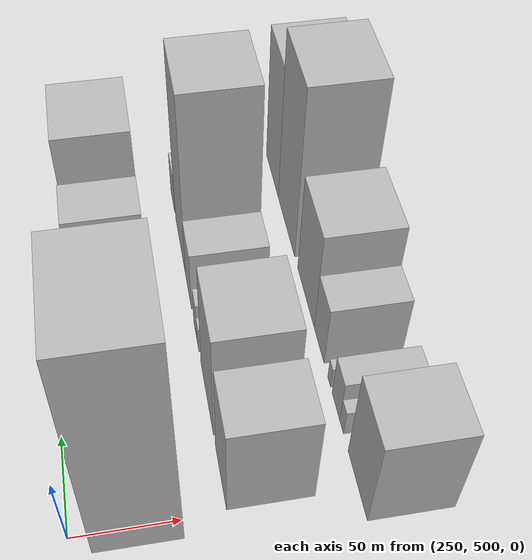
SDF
<sdf version="1.6">
 <world name="default">
  <model name="building_204">
   <static>1</static>
   <pose>280.0000 518.4276 0 0.000000 0.000000 0.000000</pose>
   <link name="link">
    <pose>0 0 73.50 0 0 0</pose>
    <collision name="collision"><geometry><box><size>40.0000 53.7367 147.0000</size></box></geometry></collision>
    <visual name="visual">
     <cast_shadows>0</cast_shadows>
     <geometry><box><size>40.0000 53.7367 147.0000</size></box></geometry>
     <material>
      <script>
       <uri>model://HANNAS_wall/materials/scripts</uri>
       <uri>model://HANNAS_wall/materials/textures</uri>
       <name>vrc/HANNAS_wall</name>
      </script>
     </material>
    </visual>
   </link>
  </model>
  <model name="building_205">
   <static>1</static>
   <pose>280.0000 563.7916 0 0.000000 0.000000 0.000000</pose>
   <link name="link">
    <pose>0 0 33.00 0 0 0</pose>
    <collision name="collision"><geometry><box><size>40.0000 36.9914 66.0000</size></box></geometry></collision>
    <visual name="visual">
     <cast_shadows>0</cast_shadows>
     <geometry><box><size>40.0000 36.9914 66.0000</size></box></geometry>
     <material>
      <script>
       <uri>model://HANNAS_wall/materials/scripts</uri>
       <uri>model://HANNAS_wall/materials/textures</uri>
       <name>vrc/HANNAS_wall</name>
      </script>
     </material>
    </visual>
   </link>
  </model>
  <model name="building_206">
   <static>1</static>
   <pose>280.0000 594.3419 0 0.000000 0.000000 0.000000</pose>
   <link name="link">
    <pose>0 0 21.00 0 0 0</pose>
    <collision name="collision"><geometry><box><size>40.0000 24.1091 42.0000</size></box></geometry></collision>
    <visual name="visual">
     <cast_shadows>0</cast_shadows>
     <geometry><box><size>40.0000 24.1091 42.0000</size></box></geometry>
     <material>
      <script>
       <uri>model://HANNAS_wall/materials/scripts</uri>
       <uri>model://HANNAS_wall/materials/textures</uri>
       <name>vrc/HANNAS_wall</name>
      </script>
     </material>
    </visual>
   </link>
  </model>
  <model name="building_207">
   <static>1</static>
   <pose>280.0000 623.6941 0 0.000000 0.000000 0.000000</pose>
   <link name="link">
    <pose>0 0 22.50 0 0 0</pose>
    <collision name="collision"><geometry><box><size>40.0000 26.5952 45.0000</size></box></geometry></collision>
    <visual name="visual">
     <cast_shadows>0</cast_shadows>
     <geometry><box><size>40.0000 26.5952 45.0000</size></box></geometry>
     <material>
      <script>
       <uri>model://HANNAS_wall/materials/scripts</uri>
       <uri>model://HANNAS_wall/materials/textures</uri>
       <name>vrc/HANNAS_wall</name>
      </script>
     </material>
    </visual>
   </link>
  </model>
  <model name="building_208">
   <static>1</static>
   <pose>280.0000 650.5038 0 0.000000 0.000000 0.000000</pose>
   <link name="link">
    <pose>0 0 25.50 0 0 0</pose>
    <collision name="collision"><geometry><box><size>40.0000 27.0244 51.0000</size></box></geometry></collision>
    <visual name="visual">
     <cast_shadows>0</cast_shadows>
     <geometry><box><size>40.0000 27.0244 51.0000</size></box></geometry>
     <material>
      <script>
       <uri>model://HANNAS_wall/materials/scripts</uri>
       <uri>model://HANNAS_wall/materials/textures</uri>
       <name>vrc/HANNAS_wall</name>
      </script>
     </material>
    </visual>
   </link>
  </model>
  <model name="building_209">
   <static>1</static>
   <pose>280.0000 692.4251 0 0.000000 0.000000 0.000000</pose>
   <link name="link">
    <pose>0 0 37.50 0 0 0</pose>
    <collision name="collision"><geometry><box><size>40.0000 42.8182 75.0000</size></box></geometry></collision>
    <visual name="visual">
     <cast_shadows>0</cast_shadows>
     <geometry><box><size>40.0000 42.8182 75.0000</size></box></geometry>
     <material>
      <script>
       <uri>model://HANNAS_wall/materials/scripts</uri>
       <uri>model://HANNAS_wall/materials/textures</uri>
       <name>vrc/HANNAS_wall</name>
      </script>
     </material>
    </visual>
   </link>
  </model>
  <model name="building_259">
   <static>1</static>
   <pose>340.0000 517.2778 0 0.000000 0.000000 0.000000</pose>
   <link name="link">
    <pose>0 0 31.50 0 0 0</pose>
    <collision name="collision"><geometry><box><size>40.0000 31.6910 63.0000</size></box></geometry></collision>
    <visual name="visual">
     <cast_shadows>0</cast_shadows>
     <geometry><box><size>40.0000 31.6910 63.0000</size></box></geometry>
     <material>
      <script>
       <uri>model://HANNAS_wall/materials/scripts</uri>
       <uri>model://HANNAS_wall/materials/textures</uri>
       <name>vrc/HANNAS_wall</name>
      </script>
     </material>
    </visual>
   </link>
  </model>
  <model name="building_260">
   <static>1</static>
   <pose>340.0000 559.4416 0 0.000000 0.000000 0.000000</pose>
   <link name="link">
    <pose>0 0 37.50 0 0 0</pose>
    <collision name="collision"><geometry><box><size>40.0000 40.6365 75.0000</size></box></geometry></collision>
    <visual name="visual">
     <cast_shadows>0</cast_shadows>
     <geometry><box><size>40.0000 40.6365 75.0000</size></box></geometry>
     <material>
      <script>
       <uri>model://HANNAS_wall/materials/scripts</uri>
       <uri>model://HANNAS_wall/materials/textures</uri>
       <name>vrc/HANNAS_wall</name>
      </script>
     </material>
    </visual>
   </link>
  </model>
  <model name="building_261">
   <static>1</static>
   <pose>340.0000 590.6284 0 0.000000 0.000000 0.000000</pose>
   <link name="link">
    <pose>0 0 9.00 0 0 0</pose>
    <collision name="collision"><geometry><box><size>40.0000 7.7369 18.0000</size></box></geometry></collision>
    <visual name="visual">
     <cast_shadows>0</cast_shadows>
     <geometry><box><size>40.0000 7.7369 18.0000</size></box></geometry>
     <material>
      <script>
       <uri>model://HANNAS_wall/materials/scripts</uri>
       <uri>model://HANNAS_wall/materials/textures</uri>
       <name>vrc/HANNAS_wall</name>
      </script>
     </material>
    </visual>
   </link>
  </model>
  <model name="building_262">
   <static>1</static>
   <pose>340.0000 600.0685 0 0.000000 0.000000 0.000000</pose>
   <link name="link">
    <pose>0 0 13.50 0 0 0</pose>
    <collision name="collision"><geometry><box><size>40.0000 11.1434 27.0000</size></box></geometry></collision>
    <visual name="visual">
     <cast_shadows>0</cast_shadows>
     <geometry><box><size>40.0000 11.1434 27.0000</size></box></geometry>
     <material>
      <script>
       <uri>model://HANNAS_wall/materials/scripts</uri>
       <uri>model://HANNAS_wall/materials/textures</uri>
       <name>vrc/HANNAS_wall</name>
      </script>
     </material>
    </visual>
   </link>
  </model>
  <model name="building_263">
   <static>1</static>
   <pose>340.0000 625.5204 0 0.000000 0.000000 0.000000</pose>
   <link name="link">
    <pose>0 0 21.00 0 0 0</pose>
    <collision name="collision"><geometry><box><size>40.0000 23.7603 42.0000</size></box></geometry></collision>
    <visual name="visual">
     <cast_shadows>0</cast_shadows>
     <geometry><box><size>40.0000 23.7603 42.0000</size></box></geometry>
     <material>
      <script>
       <uri>model://HANNAS_wall/materials/scripts</uri>
       <uri>model://HANNAS_wall/materials/textures</uri>
       <name>vrc/HANNAS_wall</name>
      </script>
     </material>
    </visual>
   </link>
  </model>
  <model name="building_264">
   <static>1</static>
   <pose>340.0000 657.7177 0 0.000000 0.000000 0.000000</pose>
   <link name="link">
    <pose>0 0 61.50 0 0 0</pose>
    <collision name="collision"><geometry><box><size>40.0000 40.6342 123.0000</size></box></geometry></collision>
    <visual name="visual">
     <cast_shadows>0</cast_shadows>
     <geometry><box><size>40.0000 40.6342 123.0000</size></box></geometry>
     <material>
      <script>
       <uri>model://HANNAS_wall/materials/scripts</uri>
       <uri>model://HANNAS_wall/materials/textures</uri>
       <name>vrc/HANNAS_wall</name>
      </script>
     </material>
    </visual>
   </link>
  </model>
  <model name="building_265">
   <static>1</static>
   <pose>340.0000 691.6384 0 0.000000 0.000000 0.000000</pose>
   <link name="link">
    <pose>0 0 15.00 0 0 0</pose>
    <collision name="collision"><geometry><box><size>40.0000 17.2072 30.0000</size></box></geometry></collision>
    <visual name="visual">
     <cast_shadows>0</cast_shadows>
     <geometry><box><size>40.0000 17.2072 30.0000</size></box></geometry>
     <material>
      <script>
       <uri>model://HANNAS_wall/materials/scripts</uri>
       <uri>model://HANNAS_wall/materials/textures</uri>
       <name>vrc/HANNAS_wall</name>
      </script>
     </material>
    </visual>
   </link>
  </model>
  <model name="building_313">
   <static>1</static>
   <pose>400.0000 503.4404 0 0.000000 0.000000 0.000000</pose>
   <link name="link">
    <pose>0 0 31.50 0 0 0</pose>
    <collision name="collision"><geometry><box><size>40.0000 34.5829 63.0000</size></box></geometry></collision>
    <visual name="visual">
     <cast_shadows>0</cast_shadows>
     <geometry><box><size>40.0000 34.5829 63.0000</size></box></geometry>
     <material>
      <script>
       <uri>model://HANNAS_wall/materials/scripts</uri>
       <uri>model://HANNAS_wall/materials/textures</uri>
       <name>vrc/HANNAS_wall</name>
      </script>
     </material>
    </visual>
   </link>
  </model>
  <model name="building_314">
   <static>1</static>
   <pose>400.0000 533.4105 0 0.000000 0.000000 0.000000</pose>
   <link name="link">
    <pose>0 0 9.00 0 0 0</pose>
    <collision name="collision"><geometry><box><size>40.0000 7.3574 18.0000</size></box></geometry></collision>
    <visual name="visual">
     <cast_shadows>0</cast_shadows>
     <geometry><box><size>40.0000 7.3574 18.0000</size></box></geometry>
     <material>
      <script>
       <uri>model://HANNAS_wall/materials/scripts</uri>
       <uri>model://HANNAS_wall/materials/textures</uri>
       <name>vrc/HANNAS_wall</name>
      </script>
     </material>
    </visual>
   </link>
  </model>
  <model name="building_315">
   <static>1</static>
   <pose>400.0000 544.8242 0 0.000000 0.000000 0.000000</pose>
   <link name="link">
    <pose>0 0 15.00 0 0 0</pose>
    <collision name="collision"><geometry><box><size>40.0000 15.4701 30.0000</size></box></geometry></collision>
    <visual name="visual">
     <cast_shadows>0</cast_shadows>
     <geometry><box><size>40.0000 15.4701 30.0000</size></box></geometry>
     <material>
      <script>
       <uri>model://HANNAS_wall/materials/scripts</uri>
       <uri>model://HANNAS_wall/materials/textures</uri>
       <name>vrc/HANNAS_wall</name>
      </script>
     </material>
    </visual>
   </link>
  </model>
  <model name="building_316">
   <static>1</static>
   <pose>400.0000 558.6317 0 0.000000 0.000000 0.000000</pose>
   <link name="link">
    <pose>0 0 7.50 0 0 0</pose>
    <collision name="collision"><geometry><box><size>40.0000 6.1450 15.0000</size></box></geometry></collision>
    <visual name="visual">
     <cast_shadows>0</cast_shadows>
     <geometry><box><size>40.0000 6.1450 15.0000</size></box></geometry>
     <material>
      <script>
       <uri>model://HANNAS_wall/materials/scripts</uri>
       <uri>model://HANNAS_wall/materials/textures</uri>
       <name>vrc/HANNAS_wall</name>
      </script>
     </material>
    </visual>
   </link>
  </model>
  <model name="building_317">
   <static>1</static>
   <pose>400.0000 580.5941 0 0.000000 0.000000 0.000000</pose>
   <link name="link">
    <pose>0 0 21.00 0 0 0</pose>
    <collision name="collision"><geometry><box><size>40.0000 21.7797 42.0000</size></box></geometry></collision>
    <visual name="visual">
     <cast_shadows>0</cast_shadows>
     <geometry><box><size>40.0000 21.7797 42.0000</size></box></geometry>
     <material>
      <script>
       <uri>model://HANNAS_wall/materials/scripts</uri>
       <uri>model://HANNAS_wall/materials/textures</uri>
       <name>vrc/HANNAS_wall</name>
      </script>
     </material>
    </visual>
   </link>
  </model>
  <model name="building_318">
   <static>1</static>
   <pose>400.0000 611.5844 0 0.000000 0.000000 0.000000</pose>
   <link name="link">
    <pose>0 0 34.50 0 0 0</pose>
    <collision name="collision"><geometry><box><size>40.0000 40.2010 69.0000</size></box></geometry></collision>
    <visual name="visual">
     <cast_shadows>0</cast_shadows>
     <geometry><box><size>40.0000 40.2010 69.0000</size></box></geometry>
     <material>
      <script>
       <uri>model://HANNAS_wall/materials/scripts</uri>
       <uri>model://HANNAS_wall/materials/textures</uri>
       <name>vrc/HANNAS_wall</name>
      </script>
     </material>
    </visual>
   </link>
  </model>
  <model name="building_319">
   <static>1</static>
   <pose>400.0000 662.3409 0 0.000000 0.000000 0.000000</pose>
   <link name="link">
    <pose>0 0 58.50 0 0 0</pose>
    <collision name="collision"><geometry><box><size>40.0000 45.3120 117.0000</size></box></geometry></collision>
    <visual name="visual">
     <cast_shadows>0</cast_shadows>
     <geometry><box><size>40.0000 45.3120 117.0000</size></box></geometry>
     <material>
      <script>
       <uri>model://HANNAS_wall/materials/scripts</uri>
       <uri>model://HANNAS_wall/materials/textures</uri>
       <name>vrc/HANNAS_wall</name>
      </script>
     </material>
    </visual>
   </link>
  </model>
  <model name="building_320">
   <static>1</static>
   <pose>400.0000 702.8738 0 0.000000 0.000000 0.000000</pose>
   <link name="link">
    <pose>0 0 46.50 0 0 0</pose>
    <collision name="collision"><geometry><box><size>40.0000 35.7539 93.0000</size></box></geometry></collision>
    <visual name="visual">
     <cast_shadows>0</cast_shadows>
     <geometry><box><size>40.0000 35.7539 93.0000</size></box></geometry>
     <material>
      <script>
       <uri>model://HANNAS_wall/materials/scripts</uri>
       <uri>model://HANNAS_wall/materials/textures</uri>
       <name>vrc/HANNAS_wall</name>
      </script>
     </material>
    </visual>
   </link>
  </model>
 </world>
</sdf>
